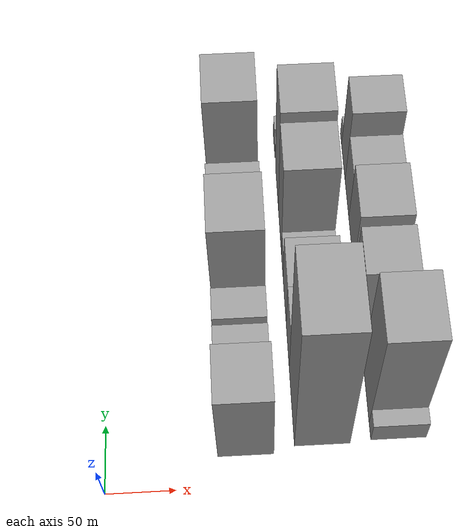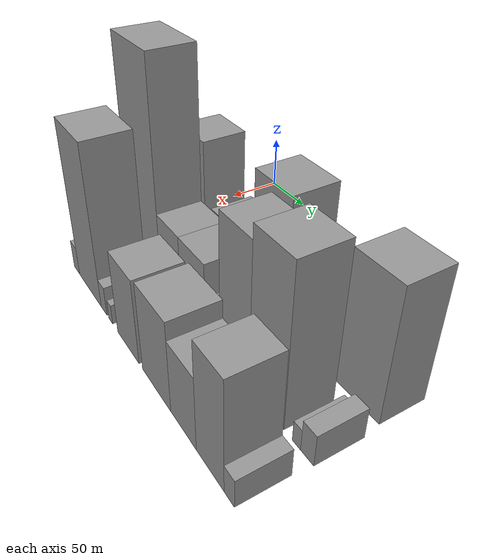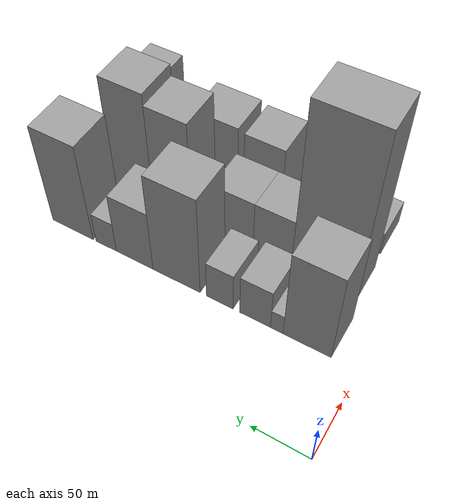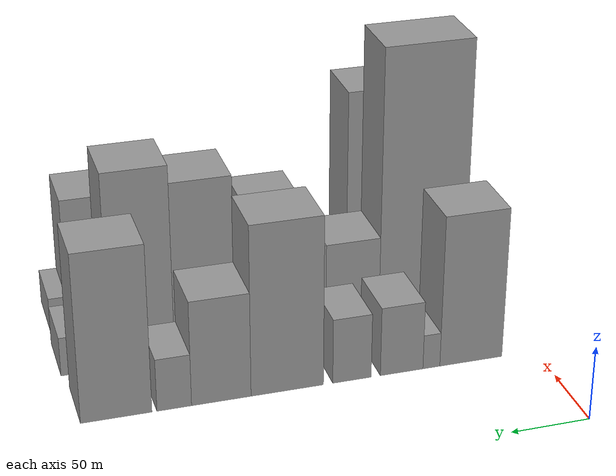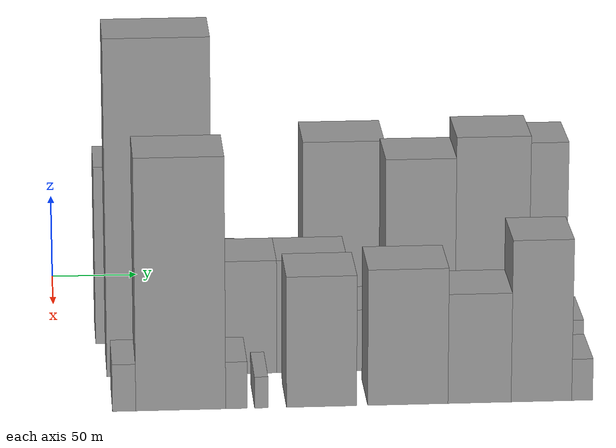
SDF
<sdf version="1.6">
 <world name="default">
  <model name="building_21">
   <static>1</static>
   <pose>100.0000 44.0193 0 0.000000 0.000000 0.000000</pose>
   <link name="link">
    <pose>0 0 52.50 0 0 0</pose>
    <collision name="collision"><geometry><box><size>40.0000 41.6909 105.0000</size></box></geometry></collision>
    <visual name="visual">
     <cast_shadows>0</cast_shadows>
     <geometry><box><size>40.0000 41.6909 105.0000</size></box></geometry>
     <material>
      <script>
       <uri>model://grey_wall/materials/scripts</uri>
       <uri>model://grey_wall/materials/textures</uri>
       <name>vrc/grey_wall</name>
      </script>
     </material>
    </visual>
   </link>
  </model>
  <model name="building_22">
   <static>1</static>
   <pose>100.0000 70.4812 0 0.000000 0.000000 0.000000</pose>
   <link name="link">
    <pose>0 0 12.00 0 0 0</pose>
    <collision name="collision"><geometry><box><size>40.0000 11.2330 24.0000</size></box></geometry></collision>
    <visual name="visual">
     <cast_shadows>0</cast_shadows>
     <geometry><box><size>40.0000 11.2330 24.0000</size></box></geometry>
     <material>
      <script>
       <uri>model://grey_wall/materials/scripts</uri>
       <uri>model://grey_wall/materials/textures</uri>
       <name>vrc/grey_wall</name>
      </script>
     </material>
    </visual>
   </link>
  </model>
  <model name="building_23">
   <static>1</static>
   <pose>100.0000 90.1137 0 0.000000 0.000000 0.000000</pose>
   <link name="link">
    <pose>0 0 24.00 0 0 0</pose>
    <collision name="collision"><geometry><box><size>40.0000 28.0321 48.0000</size></box></geometry></collision>
    <visual name="visual">
     <cast_shadows>0</cast_shadows>
     <geometry><box><size>40.0000 28.0321 48.0000</size></box></geometry>
     <material>
      <script>
       <uri>model://grey_wall/materials/scripts</uri>
       <uri>model://grey_wall/materials/textures</uri>
       <name>vrc/grey_wall</name>
      </script>
     </material>
    </visual>
   </link>
  </model>
  <model name="building_24">
   <static>1</static>
   <pose>100.0000 122.5841 0 0.000000 0.000000 0.000000</pose>
   <link name="link">
    <pose>0 0 22.50 0 0 0</pose>
    <collision name="collision"><geometry><box><size>40.0000 24.9087 45.0000</size></box></geometry></collision>
    <visual name="visual">
     <cast_shadows>0</cast_shadows>
     <geometry><box><size>40.0000 24.9087 45.0000</size></box></geometry>
     <material>
      <script>
       <uri>model://grey_wall/materials/scripts</uri>
       <uri>model://grey_wall/materials/textures</uri>
       <name>vrc/grey_wall</name>
      </script>
     </material>
    </visual>
   </link>
  </model>
  <model name="building_25">
   <static>1</static>
   <pose>100.0000 164.0409 0 0.000000 0.000000 0.000000</pose>
   <link name="link">
    <pose>0 0 58.50 0 0 0</pose>
    <collision name="collision"><geometry><box><size>40.0000 46.0048 117.0000</size></box></geometry></collision>
    <visual name="visual">
     <cast_shadows>0</cast_shadows>
     <geometry><box><size>40.0000 46.0048 117.0000</size></box></geometry>
     <material>
      <script>
       <uri>model://grey_wall/materials/scripts</uri>
       <uri>model://grey_wall/materials/textures</uri>
       <name>vrc/grey_wall</name>
      </script>
     </material>
    </visual>
   </link>
  </model>
  <model name="building_26">
   <static>1</static>
   <pose>100.0000 205.5734 0 0.000000 0.000000 0.000000</pose>
   <link name="link">
    <pose>0 0 36.00 0 0 0</pose>
    <collision name="collision"><geometry><box><size>40.0000 37.0601 72.0000</size></box></geometry></collision>
    <visual name="visual">
     <cast_shadows>0</cast_shadows>
     <geometry><box><size>40.0000 37.0601 72.0000</size></box></geometry>
     <material>
      <script>
       <uri>model://grey_wall/materials/scripts</uri>
       <uri>model://grey_wall/materials/textures</uri>
       <name>vrc/grey_wall</name>
      </script>
     </material>
    </visual>
   </link>
  </model>
  <model name="building_27">
   <static>1</static>
   <pose>100.0000 234.7324 0 0.000000 0.000000 0.000000</pose>
   <link name="link">
    <pose>0 0 18.00 0 0 0</pose>
    <collision name="collision"><geometry><box><size>40.0000 21.2580 36.0000</size></box></geometry></collision>
    <visual name="visual">
     <cast_shadows>0</cast_shadows>
     <geometry><box><size>40.0000 21.2580 36.0000</size></box></geometry>
     <material>
      <script>
       <uri>model://grey_wall/materials/scripts</uri>
       <uri>model://grey_wall/materials/textures</uri>
       <name>vrc/grey_wall</name>
      </script>
     </material>
    </visual>
   </link>
  </model>
  <model name="building_28">
   <static>1</static>
   <pose>100.0000 269.9619 0 0.000000 0.000000 0.000000</pose>
   <link name="link">
    <pose>0 0 57.00 0 0 0</pose>
    <collision name="collision"><geometry><box><size>40.0000 43.2010 114.0000</size></box></geometry></collision>
    <visual name="visual">
     <cast_shadows>0</cast_shadows>
     <geometry><box><size>40.0000 43.2010 114.0000</size></box></geometry>
     <material>
      <script>
       <uri>model://grey_wall/materials/scripts</uri>
       <uri>model://grey_wall/materials/textures</uri>
       <name>vrc/grey_wall</name>
      </script>
     </material>
    </visual>
   </link>
  </model>
  <model name="building_50">
   <static>1</static>
   <pose>155.0000 57.4615 0 0.000000 0.000000 0.000000</pose>
   <link name="link">
    <pose>0 0 97.50 0 0 0</pose>
    <collision name="collision"><geometry><box><size>40.0000 58.5223 195.0000</size></box></geometry></collision>
    <visual name="visual">
     <cast_shadows>0</cast_shadows>
     <geometry><box><size>40.0000 58.5223 195.0000</size></box></geometry>
     <material>
      <script>
       <uri>model://grey_wall/materials/scripts</uri>
       <uri>model://grey_wall/materials/textures</uri>
       <name>vrc/grey_wall</name>
      </script>
     </material>
    </visual>
   </link>
  </model>
  <model name="building_51">
   <static>1</static>
   <pose>155.0000 104.7259 0 0.000000 0.000000 0.000000</pose>
   <link name="link">
    <pose>0 0 33.00 0 0 0</pose>
    <collision name="collision"><geometry><box><size>40.0000 36.0065 66.0000</size></box></geometry></collision>
    <visual name="visual">
     <cast_shadows>0</cast_shadows>
     <geometry><box><size>40.0000 36.0065 66.0000</size></box></geometry>
     <material>
      <script>
       <uri>model://grey_wall/materials/scripts</uri>
       <uri>model://grey_wall/materials/textures</uri>
       <name>vrc/grey_wall</name>
      </script>
     </material>
    </visual>
   </link>
  </model>
  <model name="building_52">
   <static>1</static>
   <pose>155.0000 142.3442 0 0.000000 0.000000 0.000000</pose>
   <link name="link">
    <pose>0 0 33.00 0 0 0</pose>
    <collision name="collision"><geometry><box><size>40.0000 39.2301 66.0000</size></box></geometry></collision>
    <visual name="visual">
     <cast_shadows>0</cast_shadows>
     <geometry><box><size>40.0000 39.2301 66.0000</size></box></geometry>
     <material>
      <script>
       <uri>model://grey_wall/materials/scripts</uri>
       <uri>model://grey_wall/materials/textures</uri>
       <name>vrc/grey_wall</name>
      </script>
     </material>
    </visual>
   </link>
  </model>
  <model name="building_53">
   <static>1</static>
   <pose>155.0000 172.5488 0 0.000000 0.000000 0.000000</pose>
   <link name="link">
    <pose>0 0 18.00 0 0 0</pose>
    <collision name="collision"><geometry><box><size>40.0000 21.1791 36.0000</size></box></geometry></collision>
    <visual name="visual">
     <cast_shadows>0</cast_shadows>
     <geometry><box><size>40.0000 21.1791 36.0000</size></box></geometry>
     <material>
      <script>
       <uri>model://grey_wall/materials/scripts</uri>
       <uri>model://grey_wall/materials/textures</uri>
       <name>vrc/grey_wall</name>
      </script>
     </material>
    </visual>
   </link>
  </model>
  <model name="building_54">
   <static>1</static>
   <pose>155.0000 202.6950 0 0.000000 0.000000 0.000000</pose>
   <link name="link">
    <pose>0 0 61.50 0 0 0</pose>
    <collision name="collision"><geometry><box><size>40.0000 39.1133 123.0000</size></box></geometry></collision>
    <visual name="visual">
     <cast_shadows>0</cast_shadows>
     <geometry><box><size>40.0000 39.1133 123.0000</size></box></geometry>
     <material>
      <script>
       <uri>model://grey_wall/materials/scripts</uri>
       <uri>model://grey_wall/materials/textures</uri>
       <name>vrc/grey_wall</name>
      </script>
     </material>
    </visual>
   </link>
  </model>
  <model name="building_55">
   <static>1</static>
   <pose>155.0000 242.8313 0 0.000000 0.000000 0.000000</pose>
   <link name="link">
    <pose>0 0 67.50 0 0 0</pose>
    <collision name="collision"><geometry><box><size>40.0000 41.1593 135.0000</size></box></geometry></collision>
    <visual name="visual">
     <cast_shadows>0</cast_shadows>
     <geometry><box><size>40.0000 41.1593 135.0000</size></box></geometry>
     <material>
      <script>
       <uri>model://grey_wall/materials/scripts</uri>
       <uri>model://grey_wall/materials/textures</uri>
       <name>vrc/grey_wall</name>
      </script>
     </material>
    </visual>
   </link>
  </model>
  <model name="building_56">
   <static>1</static>
   <pose>155.0000 276.7451 0 0.000000 0.000000 0.000000</pose>
   <link name="link">
    <pose>0 0 9.00 0 0 0</pose>
    <collision name="collision"><geometry><box><size>40.0000 8.6683 18.0000</size></box></geometry></collision>
    <visual name="visual">
     <cast_shadows>0</cast_shadows>
     <geometry><box><size>40.0000 8.6683 18.0000</size></box></geometry>
     <material>
      <script>
       <uri>model://grey_wall/materials/scripts</uri>
       <uri>model://grey_wall/materials/textures</uri>
       <name>vrc/grey_wall</name>
      </script>
     </material>
    </visual>
   </link>
  </model>
  <model name="building_57">
   <static>1</static>
   <pose>155.0000 287.7521 0 0.000000 0.000000 0.000000</pose>
   <link name="link">
    <pose>0 0 13.50 0 0 0</pose>
    <collision name="collision"><geometry><box><size>40.0000 13.3457 27.0000</size></box></geometry></collision>
    <visual name="visual">
     <cast_shadows>0</cast_shadows>
     <geometry><box><size>40.0000 13.3457 27.0000</size></box></geometry>
     <material>
      <script>
       <uri>model://grey_wall/materials/scripts</uri>
       <uri>model://grey_wall/materials/textures</uri>
       <name>vrc/grey_wall</name>
      </script>
     </material>
    </visual>
   </link>
  </model>
  <model name="building_85">
   <static>1</static>
   <pose>210.0000 36.2346 0 0.000000 0.000000 0.000000</pose>
   <link name="link">
    <pose>0 0 13.50 0 0 0</pose>
    <collision name="collision"><geometry><box><size>40.0000 12.7011 27.0000</size></box></geometry></collision>
    <visual name="visual">
     <cast_shadows>0</cast_shadows>
     <geometry><box><size>40.0000 12.7011 27.0000</size></box></geometry>
     <material>
      <script>
       <uri>model://grey_wall/materials/scripts</uri>
       <uri>model://grey_wall/materials/textures</uri>
       <name>vrc/grey_wall</name>
      </script>
     </material>
    </visual>
   </link>
  </model>
  <model name="building_86">
   <static>1</static>
   <pose>210.0000 67.0611 0 0.000000 0.000000 0.000000</pose>
   <link name="link">
    <pose>0 0 72.00 0 0 0</pose>
    <collision name="collision"><geometry><box><size>40.0000 48.9519 144.0000</size></box></geometry></collision>
    <visual name="visual">
     <cast_shadows>0</cast_shadows>
     <geometry><box><size>40.0000 48.9519 144.0000</size></box></geometry>
     <material>
      <script>
       <uri>model://grey_wall/materials/scripts</uri>
       <uri>model://grey_wall/materials/textures</uri>
       <name>vrc/grey_wall</name>
      </script>
     </material>
    </visual>
   </link>
  </model>
  <model name="building_87">
   <static>1</static>
   <pose>210.0000 97.4123 0 0.000000 0.000000 0.000000</pose>
   <link name="link">
    <pose>0 0 13.50 0 0 0</pose>
    <collision name="collision"><geometry><box><size>40.0000 11.7505 27.0000</size></box></geometry></collision>
    <visual name="visual">
     <cast_shadows>0</cast_shadows>
     <geometry><box><size>40.0000 11.7505 27.0000</size></box></geometry>
     <material>
      <script>
       <uri>model://grey_wall/materials/scripts</uri>
       <uri>model://grey_wall/materials/textures</uri>
       <name>vrc/grey_wall</name>
      </script>
     </material>
    </visual>
   </link>
  </model>
  <model name="building_88">
   <static>1</static>
   <pose>210.0000 111.0005 0 0.000000 0.000000 0.000000</pose>
   <link name="link">
    <pose>0 0 9.00 0 0 0</pose>
    <collision name="collision"><geometry><box><size>40.0000 7.4258 18.0000</size></box></geometry></collision>
    <visual name="visual">
     <cast_shadows>0</cast_shadows>
     <geometry><box><size>40.0000 7.4258 18.0000</size></box></geometry>
     <material>
      <script>
       <uri>model://grey_wall/materials/scripts</uri>
       <uri>model://grey_wall/materials/textures</uri>
       <name>vrc/grey_wall</name>
      </script>
     </material>
    </visual>
   </link>
  </model>
  <model name="building_89">
   <static>1</static>
   <pose>210.0000 143.9252 0 0.000000 0.000000 0.000000</pose>
   <link name="link">
    <pose>0 0 37.50 0 0 0</pose>
    <collision name="collision"><geometry><box><size>40.0000 38.4236 75.0000</size></box></geometry></collision>
    <visual name="visual">
     <cast_shadows>0</cast_shadows>
     <geometry><box><size>40.0000 38.4236 75.0000</size></box></geometry>
     <material>
      <script>
       <uri>model://grey_wall/materials/scripts</uri>
       <uri>model://grey_wall/materials/textures</uri>
       <name>vrc/grey_wall</name>
      </script>
     </material>
    </visual>
   </link>
  </model>
  <model name="building_90">
   <static>1</static>
   <pose>210.0000 191.1306 0 0.000000 0.000000 0.000000</pose>
   <link name="link">
    <pose>0 0 39.00 0 0 0</pose>
    <collision name="collision"><geometry><box><size>40.0000 43.9871 78.0000</size></box></geometry></collision>
    <visual name="visual">
     <cast_shadows>0</cast_shadows>
     <geometry><box><size>40.0000 43.9871 78.0000</size></box></geometry>
     <material>
      <script>
       <uri>model://grey_wall/materials/scripts</uri>
       <uri>model://grey_wall/materials/textures</uri>
       <name>vrc/grey_wall</name>
      </script>
     </material>
    </visual>
   </link>
  </model>
  <model name="building_91">
   <static>1</static>
   <pose>210.0000 230.4710 0 0.000000 0.000000 0.000000</pose>
   <link name="link">
    <pose>0 0 31.50 0 0 0</pose>
    <collision name="collision"><geometry><box><size>40.0000 34.6938 63.0000</size></box></geometry></collision>
    <visual name="visual">
     <cast_shadows>0</cast_shadows>
     <geometry><box><size>40.0000 34.6938 63.0000</size></box></geometry>
     <material>
      <script>
       <uri>model://grey_wall/materials/scripts</uri>
       <uri>model://grey_wall/materials/textures</uri>
       <name>vrc/grey_wall</name>
      </script>
     </material>
    </visual>
   </link>
  </model>
  <model name="building_92">
   <static>1</static>
   <pose>210.0000 264.4849 0 0.000000 0.000000 0.000000</pose>
   <link name="link">
    <pose>0 0 46.50 0 0 0</pose>
    <collision name="collision"><geometry><box><size>40.0000 33.3339 93.0000</size></box></geometry></collision>
    <visual name="visual">
     <cast_shadows>0</cast_shadows>
     <geometry><box><size>40.0000 33.3339 93.0000</size></box></geometry>
     <material>
      <script>
       <uri>model://grey_wall/materials/scripts</uri>
       <uri>model://grey_wall/materials/textures</uri>
       <name>vrc/grey_wall</name>
      </script>
     </material>
    </visual>
   </link>
  </model>
  <model name="building_93">
   <static>1</static>
   <pose>210.0000 286.9102 0 0.000000 0.000000 0.000000</pose>
   <link name="link">
    <pose>0 0 12.00 0 0 0</pose>
    <collision name="collision"><geometry><box><size>40.0000 11.5167 24.0000</size></box></geometry></collision>
    <visual name="visual">
     <cast_shadows>0</cast_shadows>
     <geometry><box><size>40.0000 11.5167 24.0000</size></box></geometry>
     <material>
      <script>
       <uri>model://grey_wall/materials/scripts</uri>
       <uri>model://grey_wall/materials/textures</uri>
       <name>vrc/grey_wall</name>
      </script>
     </material>
    </visual>
   </link>
  </model>
 </world>
</sdf>
